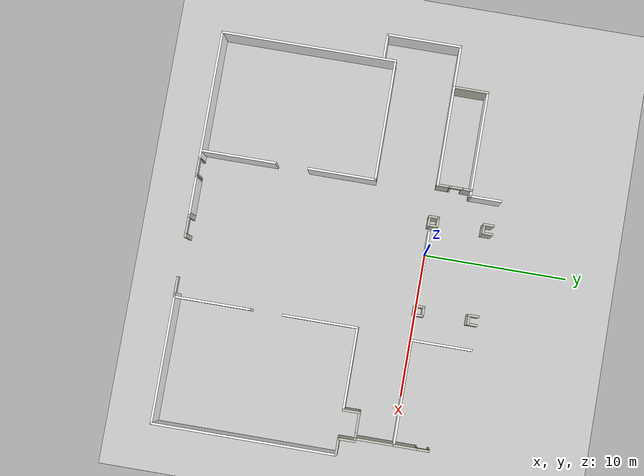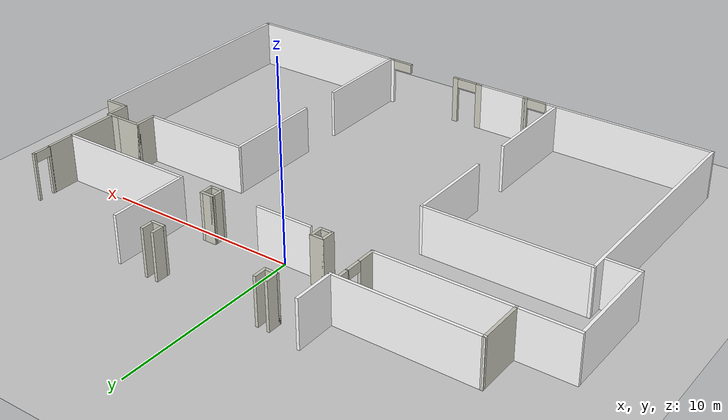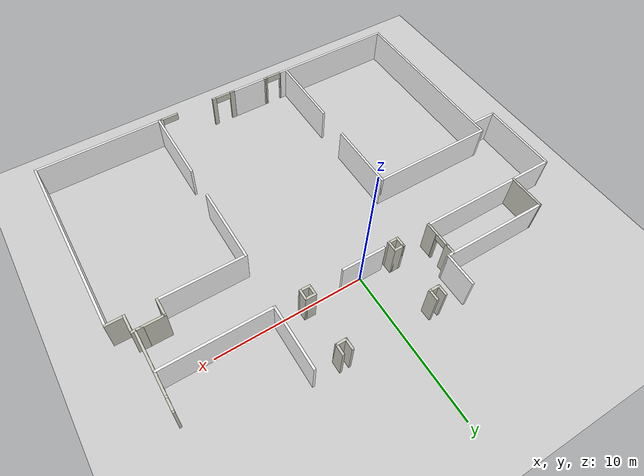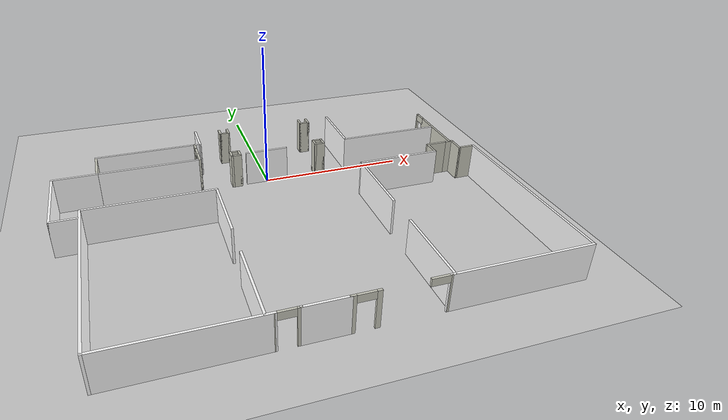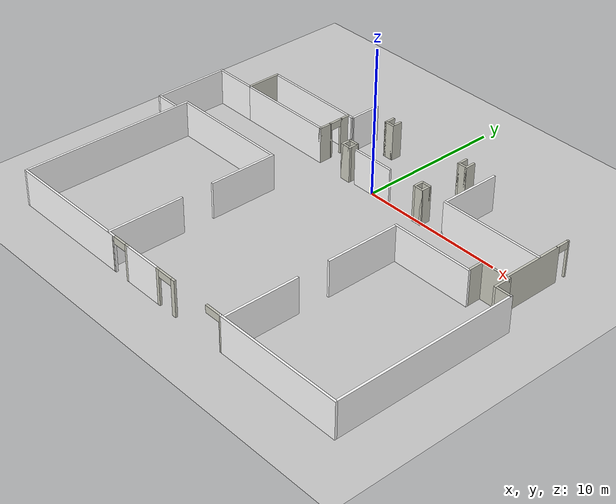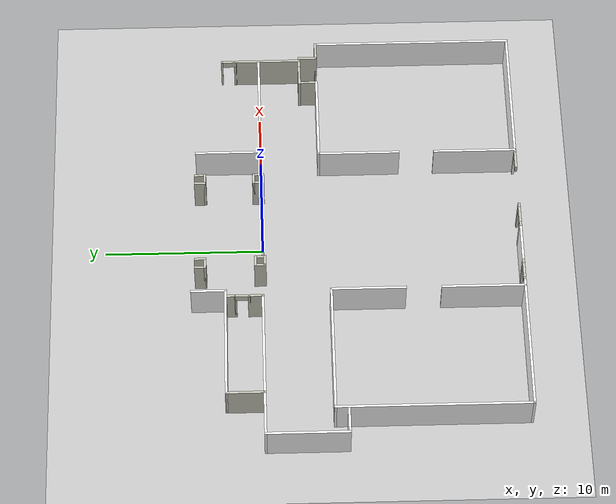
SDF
<sdf version="1.6">
 <world name="default">
  <model name="ground_plane">
   <static>1</static>
   <link name="link">
    <collision name="collision">
     <geometry><plane><normal>0 0 1</normal><size>100 100</size></plane></geometry>
     <surface><friction><ode><mu>100</mu><mu2>50</mu2></ode></friction></surface>
    </collision>
    <visual name="visual">
     <cast_shadows>0</cast_shadows>
     <geometry><plane><normal>0 0 1</normal><size>100 100</size></plane></geometry>
     <material>
      <script><uri>file://media/materials/scripts/gazebo.material</uri><name>Gazebo/Grey</name></script>
     </material>
    </visual>
   </link>
  </model>
  <model name="museum">
   <link name="Wall_115">
    <collision name="Wall_115_Collision">
     <geometry><box><size>2.5 0.15 2.5</size></box></geometry>
     <pose>0 0 1.25 0 -0 0</pose>
    </collision>
    <visual name="Wall_115_Visual">
     <pose>0 0 1.25 0 -0 0</pose>
     <geometry><box><size>2.5 0.15 2.5</size></box></geometry>
     <material>
      <script><uri>file://media/materials/scripts/gazebo.material</uri><name>Gazebo/PaintedWall</name></script>
      <ambient>1 1 1 1</ambient>
     </material>
    </visual>
    <pose>-11.5851 1.22076 0 0 0 -1.5708</pose>
   </link>
   <link name="Wall_122">
    <collision name="Wall_122_Collision">
     <geometry><box><size>7 0.15 2.5</size></box></geometry>
     <pose>0 0 1.25 0 -0 0</pose>
    </collision>
    <visual name="Wall_122_Visual">
     <pose>0 0 1.25 0 -0 0</pose>
     <geometry><box><size>7 0.15 2.5</size></box></geometry>
     <material>
      <script><uri>file://media/materials/scripts/gazebo.material</uri><name>Gazebo/Image13</name></script>
      <ambient>1 1 1 1</ambient>
     </material>
    </visual>
    <pose>-8.16012 0.045757 0 0 -0 0</pose>
   </link>
   <link name="Wall_125">
    <collision name="Wall_125_Collision">
     <geometry><box><size>1 0.15 2.5</size></box></geometry>
     <pose>0 0 1.25 0 -0 0</pose>
    </collision>
    <visual name="Wall_125_Visual">
     <pose>0 0 1.25 0 -0 0</pose>
     <geometry><box><size>1 0.15 2.5</size></box></geometry>
     <material>
      <script><uri>file://media/materials/scripts/gazebo.material</uri><name>Gazebo/PaintedWall</name></script>
      <ambient>1 1 1 1</ambient>
     </material>
    </visual>
    <pose>-4.73512 0.470757 0 0 -0 1.5708</pose>
   </link>
   <link name="Wall_126">
    <pose>-4.73512 1.32076 0 0 -0 1.5708</pose>
    <visual name="Wall_126_Visual_0">
     <pose>-0.480087 0 1.25 0 -0 0</pose>
     <geometry><box><size>0.039827 0.15 2.5</size></box></geometry>
     <material>
      <script><uri>file://media/materials/scripts/gazebo.material</uri><name>Gazebo/PaintedWall</name></script>
      <ambient>1 1 1 1</ambient>
     </material>
    </visual>
    <collision name="Wall_126_Collision_0">
     <geometry><box><size>0.039827 0.15 2.5</size></box></geometry>
     <pose>-0.480087 0 1.25 0 -0 0</pose>
    </collision>
    <visual name="Wall_126_Visual_1">
     <pose>0.469913 0 1.25 0 -0 0</pose>
     <geometry><box><size>0.060173 0.15 2.5</size></box></geometry>
     <material>
      <script><uri>file://media/materials/scripts/gazebo.material</uri><name>Gazebo/PaintedWall</name></script>
      <ambient>1 1 1 1</ambient>
     </material>
    </visual>
    <collision name="Wall_126_Collision_1">
     <geometry><box><size>0.060173 0.15 2.5</size></box></geometry>
     <pose>0.469913 0 1.25 0 -0 0</pose>
    </collision>
    <visual name="Wall_126_Visual_2">
     <pose>-0.010173 0 2.25 0 -0 0</pose>
     <geometry><box><size>0.9 0.15 0.5</size></box></geometry>
     <material>
      <script><uri>file://media/materials/scripts/gazebo.material</uri><name>Gazebo/PaintedWall</name></script>
      <ambient>1 1 1 1</ambient>
     </material>
    </visual>
    <collision name="Wall_126_Collision_2">
     <geometry><box><size>0.9 0.15 0.5</size></box></geometry>
     <pose>-0.010173 0 2.25 0 -0 0</pose>
    </collision>
   </link>
   <link name="Wall_127">
    <collision name="Wall_127_Collision">
     <geometry><box><size>0.75 0.15 2.5</size></box></geometry>
     <pose>0 0 1.25 0 -0 0</pose>
    </collision>
    <visual name="Wall_127_Visual">
     <pose>0 0 1.25 0 -0 0</pose>
     <geometry><box><size>0.75 0.15 2.5</size></box></geometry>
     <material>
      <script><uri>file://media/materials/scripts/gazebo.material</uri><name>Gazebo/PaintedWall</name></script>
      <ambient>1 1 1 1</ambient>
     </material>
    </visual>
    <pose>-4.73512 2.04576 0 0 -0 1.5708</pose>
   </link>
   <link name="Wall_135">
    <collision name="Wall_135_Collision">
     <geometry><box><size>3 0.15 2.5</size></box></geometry>
     <pose>0 0 1.25 0 -0 0</pose>
    </collision>
    <visual name="Wall_135_Visual">
     <pose>0 0 1.25 0 -0 0</pose>
     <geometry><box><size>3 0.15 2.5</size></box></geometry>
     <material>
      <script><uri>file://media/materials/scripts/gazebo.material</uri><name>Gazebo/Image27</name></script>
      <ambient>1 1 1 1</ambient>
     </material>
    </visual>
    <pose>-13.0101 0.045757 0 0 -0 3.14159</pose>
   </link>
   <link name="Wall_139">
    <collision name="Wall_139_Collision">
     <geometry><box><size>5.25 0.15 2.5</size></box></geometry>
     <pose>0 0 1.25 0 -0 0</pose>
    </collision>
    <visual name="Wall_139_Visual">
     <pose>0 0 1.25 0 -0 0</pose>
     <geometry><box><size>5.25 0.15 2.5</size></box></geometry>
     <material>
      <script><uri>file://media/materials/scripts/gazebo.material</uri><name>Gazebo/Image14</name></script>
      <ambient>1 1 1 1</ambient>
     </material>
    </visual>
    <pose>-14.4351 -2.50424 0 0 0 -1.5708</pose>
   </link>
   <link name="Wall_141">
    <collision name="Wall_141_Collision">
     <geometry><box><size>1.75 0.15 2.5</size></box></geometry>
     <pose>0 0 1.25 0 -0 0</pose>
    </collision>
    <visual name="Wall_141_Visual">
     <pose>0 0 1.25 0 -0 0</pose>
     <geometry><box><size>1.75 0.15 2.5</size></box></geometry>
     <material>
      <script><uri>file://media/materials/scripts/gazebo.material</uri><name>Gazebo/Image30</name></script>
      <ambient>1 1 1 1</ambient>
     </material>
    </visual>
    <pose>-13.6351 -5.05424 0 0 -0 0</pose>
   </link>
   <link name="Wall_146">
    <pose>13.1477 1.96699 0 0 0 -1.5708</pose>
    <visual name="Wall_146_Visual_0">
     <pose>-0.441517 0 1.25 0 -0 0</pose>
     <geometry><box><size>0.116967 0.15 2.5</size></box></geometry>
     <material>
      <script><uri>file://media/materials/scripts/gazebo.material</uri><name>Gazebo/PaintedWall</name></script>
      <ambient>1 1 1 1</ambient>
     </material>
    </visual>
    <collision name="Wall_146_Collision_0">
     <geometry><box><size>0.116967 0.15 2.5</size></box></geometry>
     <pose>-0.441517 0 1.25 0 -0 0</pose>
    </collision>
    <visual name="Wall_146_Visual_1">
     <pose>0.488483 0 1.25 0 -0 0</pose>
     <geometry><box><size>0.023033 0.15 2.5</size></box></geometry>
     <material>
      <script><uri>file://media/materials/scripts/gazebo.material</uri><name>Gazebo/PaintedWall</name></script>
      <ambient>1 1 1 1</ambient>
     </material>
    </visual>
    <collision name="Wall_146_Collision_1">
     <geometry><box><size>0.023033 0.15 2.5</size></box></geometry>
     <pose>0.488483 0 1.25 0 -0 0</pose>
    </collision>
    <visual name="Wall_146_Visual_2">
     <pose>0.046967 0 2.25 0 -0 0</pose>
     <geometry><box><size>0.86 0.15 0.5</size></box></geometry>
     <material>
      <script><uri>file://media/materials/scripts/gazebo.material</uri><name>Gazebo/PaintedWall</name></script>
      <ambient>1 1 1 1</ambient>
     </material>
    </visual>
    <collision name="Wall_146_Collision_2">
     <geometry><box><size>0.86 0.15 0.5</size></box></geometry>
     <pose>0.046967 0 2.25 0 -0 0</pose>
    </collision>
   </link>
   <link name="Wall_160">
    <collision name="Wall_160_Collision">
     <geometry><box><size>4.25 0.15 2.5</size></box></geometry>
     <pose>0 0 1.25 0 -0 0</pose>
    </collision>
    <visual name="Wall_160_Visual">
     <pose>0 0 1.25 0 -0 0</pose>
     <geometry><box><size>4.25 0.15 2.5</size></box></geometry>
     <material>
      <script><uri>file://media/materials/scripts/gazebo.material</uri><name>Gazebo/PaintedWall</name></script>
      <ambient>1 1 1 1</ambient>
     </material>
    </visual>
    <pose>13.1477 -0.508007 0 0 0 -1.5708</pose>
   </link>
   <link name="Wall_166">
    <collision name="Wall_166_Collision">
     <geometry><box><size>5.25 0.15 2.5</size></box></geometry>
     <pose>0 0 1.25 0 -0 0</pose>
    </collision>
    <visual name="Wall_166_Visual">
     <pose>0 0 1.25 0 -0 0</pose>
     <geometry><box><size>5.25 0.15 2.5</size></box></geometry>
     <material>
      <script><uri>file://media/materials/scripts/gazebo.material</uri><name>Gazebo/Image2</name></script>
      <ambient>1 1 1 1</ambient>
     </material>
    </visual>
    <pose>-4.36045 -13.7284 0 0 0 -1.5708</pose>
   </link>
   <link name="Wall_170">
    <collision name="Wall_170_Collision">
     <geometry><box><size>3 0.15 2.5</size></box></geometry>
     <pose>0 0 1.25 0 -0 0</pose>
    </collision>
    <visual name="Wall_170_Visual">
     <pose>0 0 1.25 0 -0 0</pose>
     <geometry><box><size>3 0.15 2.5</size></box></geometry>
     <material>
      <script><uri>file://media/materials/scripts/gazebo.material</uri><name>Gazebo/Image25</name></script>
      <ambient>1 1 1 1</ambient>
     </material>
    </visual>
   </link>
   <link name="Wall_192">
    <collision name="Wall_192_Collision">
     <geometry><box><size>0.75 0.15 2.5</size></box></geometry>
     <pose>0 0 1.25 0 -0 0</pose>
    </collision>
    <visual name="Wall_192_Visual">
     <pose>0 0 1.25 0 -0 0</pose>
     <geometry><box><size>0.75 0.15 2.5</size></box></geometry>
     <material>
      <script><uri>file://media/materials/scripts/gazebo.material</uri><name>Gazebo/PaintedWall</name></script>
      <ambient>1 1 1 1</ambient>
     </material>
    </visual>
    <pose>-2.20621 0.469078 0 0 -0 0</pose>
   </link>
   <link name="Wall_193">
    <collision name="Wall_193_Collision">
     <geometry><box><size>0.75 0.15 2.5</size></box></geometry>
     <pose>0 0 1.25 0 -0 0</pose>
    </collision>
    <visual name="Wall_193_Visual">
     <pose>0 0 1.25 0 -0 0</pose>
     <geometry><box><size>0.75 0.15 2.5</size></box></geometry>
     <material>
      <script><uri>file://media/materials/scripts/gazebo.material</uri><name>Gazebo/PaintedWall</name></script>
      <ambient>1 1 1 1</ambient>
     </material>
    </visual>
    <pose>-1.90621 0.169078 0 0 0 -1.5708</pose>
   </link>
   <link name="Wall_194">
    <collision name="Wall_194_Collision">
     <geometry><box><size>0.75 0.15 2.5</size></box></geometry>
     <pose>0 0 1.25 0 -0 0</pose>
    </collision>
    <visual name="Wall_194_Visual">
     <pose>0 0 1.25 0 -0 0</pose>
     <geometry><box><size>0.75 0.15 2.5</size></box></geometry>
     <material>
      <script><uri>file://media/materials/scripts/gazebo.material</uri><name>Gazebo/PaintedWall</name></script>
      <ambient>1 1 1 1</ambient>
     </material>
    </visual>
    <pose>-2.20621 -0.130922 0 0 -0 3.14159</pose>
   </link>
   <link name="Wall_195">
    <collision name="Wall_195_Collision">
     <geometry><box><size>0.75 0.15 2.5</size></box></geometry>
     <pose>0 0 1.25 0 -0 0</pose>
    </collision>
    <visual name="Wall_195_Visual">
     <pose>0 0 1.25 0 -0 0</pose>
     <geometry><box><size>0.75 0.15 2.5</size></box></geometry>
     <material>
      <script><uri>file://media/materials/scripts/gazebo.material</uri><name>Gazebo/PaintedWall</name></script>
      <ambient>1 1 1 1</ambient>
     </material>
    </visual>
    <pose>-2.50622 0.169078 0 0 -0 1.5708</pose>
   </link>
   <link name="Wall_197">
    <collision name="Wall_197_Collision">
     <geometry><box><size>0.75 0.15 2.5</size></box></geometry>
     <pose>0 0 1.25 0 -0 0</pose>
    </collision>
    <visual name="Wall_197_Visual">
     <pose>0 0 1.25 0 -0 0</pose>
     <geometry><box><size>0.75 0.15 2.5</size></box></geometry>
     <material>
      <script><uri>file://media/materials/scripts/gazebo.material</uri><name>Gazebo/PaintedWall</name></script>
      <ambient>1 1 1 1</ambient>
     </material>
    </visual>
    <pose>3.9677 0.495165 0 0 -0 0</pose>
   </link>
   <link name="Wall_198">
    <collision name="Wall_198_Collision">
     <geometry><box><size>0.75 0.15 2.5</size></box></geometry>
     <pose>0 0 1.25 0 -0 0</pose>
    </collision>
    <visual name="Wall_198_Visual">
     <pose>0 0 1.25 0 -0 0</pose>
     <geometry><box><size>0.75 0.15 2.5</size></box></geometry>
     <material>
      <script><uri>file://media/materials/scripts/gazebo.material</uri><name>Gazebo/PaintedWall</name></script>
      <ambient>1 1 1 1</ambient>
     </material>
    </visual>
    <pose>4.2677 0.195165 0 0 0 -1.5708</pose>
   </link>
   <link name="Wall_199">
    <collision name="Wall_199_Collision">
     <geometry><box><size>0.75 0.15 2.5</size></box></geometry>
     <pose>0 0 1.25 0 -0 0</pose>
    </collision>
    <visual name="Wall_199_Visual">
     <pose>0 0 1.25 0 -0 0</pose>
     <geometry><box><size>0.75 0.15 2.5</size></box></geometry>
     <material>
      <script><uri>file://media/materials/scripts/gazebo.material</uri><name>Gazebo/PaintedWall</name></script>
      <ambient>1 1 1 1</ambient>
     </material>
    </visual>
    <pose>3.9677 -0.104835 0 0 -0 3.14159</pose>
   </link>
   <link name="Wall_200">
    <collision name="Wall_200_Collision">
     <geometry><box><size>0.75 0.15 2.5</size></box></geometry>
     <pose>0 0 1.25 0 -0 0</pose>
    </collision>
    <visual name="Wall_200_Visual">
     <pose>0 0 1.25 0 -0 0</pose>
     <geometry><box><size>0.75 0.15 2.5</size></box></geometry>
     <material>
      <script><uri>file://media/materials/scripts/gazebo.material</uri><name>Gazebo/PaintedWall</name></script>
      <ambient>1 1 1 1</ambient>
     </material>
    </visual>
    <pose>3.6677 0.195165 0 0 -0 1.5708</pose>
   </link>
   <link name="Wall_203">
    <collision name="Wall_203_Collision">
     <geometry><box><size>0.75 0.15 2.5</size></box></geometry>
     <pose>0 0 1.25 0 -0 0</pose>
    </collision>
    <visual name="Wall_203_Visual">
     <pose>0 0 1.25 0 -0 0</pose>
     <geometry><box><size>0.75 0.15 2.5</size></box></geometry>
     <material>
      <script><uri>file://media/materials/scripts/gazebo.material</uri><name>Gazebo/PaintedWall</name></script>
      <ambient>1 1 1 1</ambient>
     </material>
    </visual>
    <pose>-1.98447 3.9343 0 0 0 -1.5708</pose>
   </link>
   <link name="Wall_204">
    <collision name="Wall_204_Collision">
     <geometry><box><size>0.75 0.15 2.5</size></box></geometry>
     <pose>0 0 1.25 0 -0 0</pose>
    </collision>
    <visual name="Wall_204_Visual">
     <pose>0 0 1.25 0 -0 0</pose>
     <geometry><box><size>0.75 0.15 2.5</size></box></geometry>
     <material>
      <script><uri>file://media/materials/scripts/gazebo.material</uri><name>Gazebo/PaintedWall</name></script>
      <ambient>1 1 1 1</ambient>
     </material>
    </visual>
    <pose>-2.28448 3.6343 0 0 -0 3.14159</pose>
   </link>
   <link name="Wall_205">
    <collision name="Wall_205_Collision">
     <geometry><box><size>0.75 0.15 2.5</size></box></geometry>
     <pose>0 0 1.25 0 -0 0</pose>
    </collision>
    <visual name="Wall_205_Visual">
     <pose>0 0 1.25 0 -0 0</pose>
     <geometry><box><size>0.75 0.15 2.5</size></box></geometry>
     <material>
      <script><uri>file://media/materials/scripts/gazebo.material</uri><name>Gazebo/PaintedWall</name></script>
      <ambient>1 1 1 1</ambient>
     </material>
    </visual>
    <pose>-2.58448 3.9343 0 0 -0 1.5708</pose>
   </link>
   <link name="Wall_208">
    <collision name="Wall_208_Collision">
     <geometry><box><size>0.75 0.15 2.5</size></box></geometry>
     <pose>0 0 1.25 0 -0 0</pose>
    </collision>
    <visual name="Wall_208_Visual">
     <pose>0 0 1.25 0 -0 0</pose>
     <geometry><box><size>0.75 0.15 2.5</size></box></geometry>
     <material>
      <script><uri>file://media/materials/scripts/gazebo.material</uri><name>Gazebo/PaintedWall</name></script>
      <ambient>1 1 1 1</ambient>
     </material>
    </visual>
    <pose>4.28509 3.90821 0 0 0 -1.5708</pose>
   </link>
   <link name="Wall_209">
    <collision name="Wall_209_Collision">
     <geometry><box><size>0.75 0.15 2.5</size></box></geometry>
     <pose>0 0 1.25 0 -0 0</pose>
    </collision>
    <visual name="Wall_209_Visual">
     <pose>0 0 1.25 0 -0 0</pose>
     <geometry><box><size>0.75 0.15 2.5</size></box></geometry>
     <material>
      <script><uri>file://media/materials/scripts/gazebo.material</uri><name>Gazebo/PaintedWall</name></script>
      <ambient>1 1 1 1</ambient>
     </material>
    </visual>
    <pose>3.98509 3.60821 0 0 -0 3.14159</pose>
   </link>
   <link name="Wall_210">
    <collision name="Wall_210_Collision">
     <geometry><box><size>0.75 0.15 2.5</size></box></geometry>
     <pose>0 0 1.25 0 -0 0</pose>
    </collision>
    <visual name="Wall_210_Visual">
     <pose>0 0 1.25 0 -0 0</pose>
     <geometry><box><size>0.75 0.15 2.5</size></box></geometry>
     <material>
      <script><uri>file://media/materials/scripts/gazebo.material</uri><name>Gazebo/PaintedWall</name></script>
      <ambient>1 1 1 1</ambient>
     </material>
    </visual>
    <pose>3.68509 3.90821 0 0 -0 1.5708</pose>
   </link>
   <link name="Wall_251">
    <collision name="Wall_251_Collision">
     <geometry><box><size>4.25 0.15 2.5</size></box></geometry>
     <pose>0 0 1.25 0 -0 0</pose>
    </collision>
    <visual name="Wall_251_Visual">
     <pose>0 0 1.25 0 -0 0</pose>
     <geometry><box><size>4.25 0.15 2.5</size></box></geometry>
     <material>
      <script><uri>file://media/materials/scripts/gazebo.material</uri><name>Gazebo/Image</name></script>
      <ambient>1 1 1 1</ambient>
     </material>
    </visual>
    <pose>6.00362 2.0683 0 0 0 -1.5708</pose>
   </link>
   <link name="Wall_252">
    <collision name="Wall_252_Collision">
     <geometry><box><size>7.25 0.15 2.5</size></box></geometry>
     <pose>0 0 1.25 0 -0 0</pose>
    </collision>
    <visual name="Wall_252_Visual">
     <pose>0 0 1.25 0 -0 0</pose>
     <geometry><box><size>7.25 0.15 2.5</size></box></geometry>
     <material>
      <script><uri>file://media/materials/scripts/gazebo.material</uri><name>Gazebo/Image10</name></script>
      <ambient>1 1 1 1</ambient>
     </material>
    </visual>
    <pose>9.55362 0.018299 0 0 -0 0</pose>
   </link>
   <link name="Wall_3">
    <collision name="Wall_3_Collision">
     <geometry><box><size>2.25 0.15 2.5</size></box></geometry>
     <pose>0 0 1.25 0 -0 0</pose>
    </collision>
    <visual name="Wall_3_Visual">
     <pose>0 0 1.25 0 -0 0</pose>
     <geometry><box><size>2.25 0.15 2.5</size></box></geometry>
     <material>
      <script><uri>file://media/materials/scripts/gazebo.material</uri><name>Gazebo/Image26</name></script>
      <ambient>1 1 1 1</ambient>
     </material>
    </visual>
    <pose>-4.33523 3.42476 0 0 0 -1.5708</pose>
   </link>
   <link name="Wall_54">
    <collision name="Wall_54_Collision">
     <geometry><box><size>0.75 0.15 2.5</size></box></geometry>
     <pose>0 0 1.25 0 -0 0</pose>
    </collision>
    <visual name="Wall_54_Visual">
     <pose>0 0 1.25 0 -0 0</pose>
     <geometry><box><size>0.75 0.15 2.5</size></box></geometry>
     <material>
      <script><uri>file://media/materials/scripts/gazebo.material</uri><name>Gazebo/PaintedWall</name></script>
      <ambient>1 1 1 1</ambient>
     </material>
    </visual>
    <pose>13.0351 -2.62487 0 0 -0 0</pose>
   </link>
   <link name="Wall_55">
    <collision name="Wall_55_Collision">
     <geometry><box><size>1.25 0.15 2.5</size></box></geometry>
     <pose>0 0 1.25 0 -0 0</pose>
    </collision>
    <visual name="Wall_55_Visual">
     <pose>0 0 1.25 0 -0 0</pose>
     <geometry><box><size>1.25 0.15 2.5</size></box></geometry>
     <material>
      <script><uri>file://media/materials/scripts/gazebo.material</uri><name>Gazebo/PaintedWall</name></script>
      <ambient>1 1 1 1</ambient>
     </material>
    </visual>
    <pose>13.3351 -3.17487 0 0 0 -1.5708</pose>
   </link>
   <link name="Wall_56">
    <collision name="Wall_56_Collision">
     <geometry><box><size>1.25 0.15 2.5</size></box></geometry>
     <pose>0 0 1.25 0 -0 0</pose>
    </collision>
    <visual name="Wall_56_Visual">
     <pose>0 0 1.25 0 -0 0</pose>
     <geometry><box><size>1.25 0.15 2.5</size></box></geometry>
     <material>
      <script><uri>file://media/materials/scripts/gazebo.material</uri><name>Gazebo/PaintedWall</name></script>
      <ambient>1 1 1 1</ambient>
     </material>
    </visual>
    <pose>13.8851 -3.72487 0 0 -0 0</pose>
   </link>
   <link name="Wall_59">
    <collision name="Wall_59_Collision">
     <geometry><box><size>12.75 0.15 2.5</size></box></geometry>
     <pose>0 0 1.25 0 -0 0</pose>
    </collision>
    <visual name="Wall_59_Visual">
     <pose>0 0 1.25 0 -0 0</pose>
     <geometry><box><size>12.75 0.15 2.5</size></box></geometry>
     <material>
      <script><uri>file://media/materials/scripts/gazebo.material</uri><name>Gazebo/Image12</name></script>
      <ambient>1 1 1 1</ambient>
     </material>
    </visual>
    <pose>14.4351 -10.0249 0 0 0 -1.5708</pose>
   </link>
   <link name="Wall_60">
    <collision name="Wall_60_Collision">
     <geometry><box><size>9 0.15 2.5</size></box></geometry>
     <pose>0 0 1.25 0 -0 0</pose>
    </collision>
    <visual name="Wall_60_Visual">
     <pose>0 0 1.25 0 -0 0</pose>
     <geometry><box><size>9 0.15 2.5</size></box></geometry>
     <material>
      <script><uri>file://media/materials/scripts/gazebo.material</uri><name>Gazebo/Image11</name></script>
      <ambient>1 1 1 1</ambient>
     </material>
    </visual>
    <pose>10.0101 -16.3249 0 0 -0 3.14159</pose>
   </link>
   <link name="Wall_66">
    <pose>5.03512 -16.3249 0 0 -0 3.14159</pose>
    <visual name="Wall_66_Visual_0">
     <pose>-0.574555 0 1.25 0 -0 0</pose>
     <geometry><box><size>0.10089 0.15 2.5</size></box></geometry>
     <material>
      <script><uri>file://media/materials/scripts/gazebo.material</uri><name>Gazebo/PaintedWall</name></script>
      <ambient>1 1 1 1</ambient>
     </material>
    </visual>
    <collision name="Wall_66_Collision_0">
     <geometry><box><size>0.10089 0.15 2.5</size></box></geometry>
     <pose>-0.574555 0 1.25 0 -0 0</pose>
    </collision>
    <visual name="Wall_66_Visual_1">
     <pose>0.050445 0 2.25 0 -0 0</pose>
     <geometry><box><size>1.14911 0.15 0.5</size></box></geometry>
     <material>
      <script><uri>file://media/materials/scripts/gazebo.material</uri><name>Gazebo/PaintedWall</name></script>
      <ambient>1 1 1 1</ambient>
     </material>
    </visual>
    <collision name="Wall_66_Collision_1">
     <geometry><box><size>1.14911 0.15 0.5</size></box></geometry>
     <pose>0.050445 0 2.25 0 -0 0</pose>
    </collision>
   </link>
   <link name="Wall_70">
    <pose>0.835118 -16.3249 0 0 -0 3.14159</pose>
    <visual name="Wall_70_Visual_0">
     <pose>-0.726513 0 1.25 0 -0 0</pose>
     <geometry><box><size>0.296974 0.15 2.5</size></box></geometry>
     <material>
      <script><uri>file://media/materials/scripts/gazebo.material</uri><name>Gazebo/PaintedWall</name></script>
      <ambient>1 1 1 1</ambient>
     </material>
    </visual>
    <collision name="Wall_70_Collision_0">
     <geometry><box><size>0.296974 0.15 2.5</size></box></geometry>
     <pose>-0.726513 0 1.25 0 -0 0</pose>
    </collision>
    <visual name="Wall_70_Visual_1">
     <pose>0.697252 0 1.25 0 -0 0</pose>
     <geometry><box><size>0.355495 0.15 2.5</size></box></geometry>
     <material>
      <script><uri>file://media/materials/scripts/gazebo.material</uri><name>Gazebo/PaintedWall</name></script>
      <ambient>1 1 1 1</ambient>
     </material>
    </visual>
    <collision name="Wall_70_Collision_1">
     <geometry><box><size>0.355495 0.15 2.5</size></box></geometry>
     <pose>0.697252 0 1.25 0 -0 0</pose>
    </collision>
    <visual name="Wall_70_Visual_2">
     <pose>-0.029261 0 2.25 0 -0 0</pose>
     <geometry><box><size>1.09753 0.15 0.5</size></box></geometry>
     <material>
      <script><uri>file://media/materials/scripts/gazebo.material</uri><name>Gazebo/PaintedWall</name></script>
      <ambient>1 1 1 1</ambient>
     </material>
    </visual>
    <collision name="Wall_70_Collision_2">
     <geometry><box><size>1.09753 0.15 0.5</size></box></geometry>
     <pose>-0.029261 0 2.25 0 -0 0</pose>
    </collision>
   </link>
   <link name="Wall_71">
    <collision name="Wall_71_Collision">
     <geometry><box><size>2.75 0.15 2.5</size></box></geometry>
     <pose>0 0 1.25 0 -0 0</pose>
    </collision>
    <visual name="Wall_71_Visual">
     <pose>0 0 1.25 0 -0 0</pose>
     <geometry><box><size>2.75 0.15 2.5</size></box></geometry>
     <material>
      <script><uri>file://media/materials/scripts/gazebo.material</uri><name>Gazebo/Image24</name></script>
      <ambient>1 1 1 1</ambient>
     </material>
    </visual>
    <pose>-1.26488 -16.3249 0 0 -0 3.14159</pose>
   </link>
   <link name="Wall_75">
    <pose>-3.21267 -16.3266 0 0 -0 0.002733</pose>
    <visual name="Wall_75_Visual_0">
     <pose>-0.658764 0 1.25 0 -0 0</pose>
     <geometry><box><size>0.128044 0.15 2.5</size></box></geometry>
     <material>
      <script><uri>file://media/materials/scripts/gazebo.material</uri><name>Gazebo/PaintedWall</name></script>
      <ambient>1 1 1 1</ambient>
     </material>
    </visual>
    <collision name="Wall_75_Collision_0">
     <geometry><box><size>0.128044 0.15 2.5</size></box></geometry>
     <pose>-0.658764 0 1.25 0 -0 0</pose>
    </collision>
    <visual name="Wall_75_Visual_1">
     <pose>0.59079 0 1.25 0 -0 0</pose>
     <geometry><box><size>0.263992 0.15 2.5</size></box></geometry>
     <material>
      <script><uri>file://media/materials/scripts/gazebo.material</uri><name>Gazebo/PaintedWall</name></script>
      <ambient>1 1 1 1</ambient>
     </material>
    </visual>
    <collision name="Wall_75_Collision_1">
     <geometry><box><size>0.263992 0.15 2.5</size></box></geometry>
     <pose>0.59079 0 1.25 0 -0 0</pose>
    </collision>
    <visual name="Wall_75_Visual_2">
     <pose>-0.067974 0 2.25 0 -0 0</pose>
     <geometry><box><size>1.05354 0.15 0.5</size></box></geometry>
     <material>
      <script><uri>file://media/materials/scripts/gazebo.material</uri><name>Gazebo/PaintedWall</name></script>
      <ambient>1 1 1 1</ambient>
     </material>
    </visual>
    <collision name="Wall_75_Collision_2">
     <geometry><box><size>1.05354 0.15 0.5</size></box></geometry>
     <pose>-0.067974 0 2.25 0 -0 0</pose>
    </collision>
   </link>
   <link name="Wall_77">
    <collision name="Wall_77_Collision">
     <geometry><box><size>9 0.15 2.5</size></box></geometry>
     <pose>0 0 1.25 0 -0 0</pose>
    </collision>
    <visual name="Wall_77_Visual">
     <pose>0 0 1.25 0 -0 0</pose>
     <geometry><box><size>9 0.15 2.5</size></box></geometry>
     <material>
      <script><uri>file://media/materials/scripts/gazebo.material</uri><name>Gazebo/Image7</name></script>
      <ambient>1 1 1 1</ambient>
     </material>
    </visual>
    <pose>-8.28545 -16.3284 0 0 -0 3.14159</pose>
   </link>
   <link name="Wall_8">
    <collision name="Wall_8_Collision">
     <geometry><box><size>7.39992 0.15 2.5</size></box></geometry>
     <pose>0 0 1.25 0 -0 0</pose>
    </collision>
    <visual name="Wall_8_Visual">
     <pose>0 0 1.25 0 -0 0</pose>
     <geometry><box><size>7.39992 0.15 2.5</size></box></geometry>
     <material>
      <script><uri>file://media/materials/scripts/gazebo.material</uri><name>Gazebo/Image16</name></script>
      <ambient>1 1 1 1</ambient>
     </material>
    </visual>
    <pose>-7.96018 2.38526 0 0 -0 3.1387</pose>
   </link>
   <link name="Wall_80">
    <collision name="Wall_80_Collision">
     <geometry><box><size>12.25 0.15 2.5</size></box></geometry>
     <pose>0 0 1.25 0 -0 0</pose>
    </collision>
    <visual name="Wall_80_Visual">
     <pose>0 0 1.25 0 -0 0</pose>
     <geometry><box><size>12.25 0.15 2.5</size></box></geometry>
     <material>
      <script><uri>file://media/materials/scripts/gazebo.material</uri><name>Gazebo/Image5</name></script>
      <ambient>1 1 1 1</ambient>
     </material>
    </visual>
    <pose>-12.7104 -10.2784 0 0 -0 1.5708</pose>
   </link>
   <link name="Wall_82">
    <collision name="Wall_82_Collision">
     <geometry><box><size>8.5 0.15 2.5</size></box></geometry>
     <pose>0 0 1.25 0 -0 0</pose>
    </collision>
    <visual name="Wall_82_Visual">
     <pose>0 0 1.25 0 -0 0</pose>
     <geometry><box><size>8.5 0.15 2.5</size></box></geometry>
     <material>
      <script><uri>file://media/materials/scripts/gazebo.material</uri><name>Gazebo/Image6</name></script>
      <ambient>1 1 1 1</ambient>
     </material>
    </visual>
    <pose>-8.53545 -4.22841 0 0 -0 0</pose>
   </link>
   <link name="Wall_83">
    <collision name="Wall_83_Collision">
     <geometry><box><size>4.75 0.15 2.5</size></box></geometry>
     <pose>0 0 1.25 0 -0 0</pose>
    </collision>
    <visual name="Wall_83_Visual">
     <pose>0 0 1.25 0 -0 0</pose>
     <geometry><box><size>4.75 0.15 2.5</size></box></geometry>
     <material>
      <script><uri>file://media/materials/scripts/gazebo.material</uri><name>Gazebo/Image3</name></script>
      <ambient>1 1 1 1</ambient>
     </material>
    </visual>
    <pose>-4.36045 -6.52841 0 0 0 -1.5708</pose>
   </link>
   <link name="Wall_92">
    <collision name="Wall_92_Collision">
     <geometry><box><size>1.5 0.15 2.5</size></box></geometry>
     <pose>0 0 1.25 0 -0 0</pose>
    </collision>
    <visual name="Wall_92_Visual">
     <pose>0 0 1.25 0 -0 0</pose>
     <geometry><box><size>1.5 0.15 2.5</size></box></geometry>
     <material>
      <script><uri>file://media/materials/scripts/gazebo.material</uri><name>Gazebo/PaintedWall</name></script>
      <ambient>1 1 1 1</ambient>
     </material>
    </visual>
    <pose>12.0601 -2.62487 0 0 -0 3.14159</pose>
   </link>
   <link name="Wall_93">
    <collision name="Wall_93_Collision">
     <geometry><box><size>1.25 0.15 2.5</size></box></geometry>
     <pose>0 0 1.25 0 -0 0</pose>
    </collision>
    <visual name="Wall_93_Visual">
     <pose>0 0 1.25 0 -0 0</pose>
     <geometry><box><size>1.25 0.15 2.5</size></box></geometry>
     <material>
      <script><uri>file://media/materials/scripts/gazebo.material</uri><name>Gazebo/PaintedWall</name></script>
      <ambient>1 1 1 1</ambient>
     </material>
    </visual>
    <pose>11.3851 -3.17487 0 0 0 -1.5708</pose>
   </link>
   <link name="Wall_94">
    <collision name="Wall_94_Collision">
     <geometry><box><size>5.75 0.15 2.5</size></box></geometry>
     <pose>0 0 1.25 0 -0 0</pose>
    </collision>
    <visual name="Wall_94_Visual">
     <pose>0 0 1.25 0 -0 0</pose>
     <geometry><box><size>5.75 0.15 2.5</size></box></geometry>
     <material>
      <script><uri>file://media/materials/scripts/gazebo.material</uri><name>Gazebo/Image9</name></script>
      <ambient>1 1 1 1</ambient>
     </material>
    </visual>
    <pose>8.58512 -3.72487 0 0 -0 3.14159</pose>
   </link>
   <link name="Wall_95">
    <collision name="Wall_95_Collision">
     <geometry><box><size>5.25 0.15 2.5</size></box></geometry>
     <pose>0 0 1.25 0 -0 0</pose>
    </collision>
    <visual name="Wall_95_Visual">
     <pose>0 0 1.25 0 -0 0</pose>
     <geometry><box><size>5.25 0.15 2.5</size></box></geometry>
     <material>
      <script><uri>file://media/materials/scripts/gazebo.material</uri><name>Gazebo/Image1</name></script>
      <ambient>1 1 1 1</ambient>
     </material>
    </visual>
    <pose>5.78512 -6.27487 0 0 0 -1.5708</pose>
   </link>
   <link name="Wall_99">
    <collision name="Wall_99_Collision">
     <geometry><box><size>5.25 0.15 2.5</size></box></geometry>
     <pose>0 0 1.25 0 -0 0</pose>
    </collision>
    <visual name="Wall_99_Visual">
     <pose>0 0 1.25 0 -0 0</pose>
     <geometry><box><size>5.25 0.15 2.5</size></box></geometry>
     <material>
      <script><uri>file://media/materials/scripts/gazebo.material</uri><name>Gazebo/Image8</name></script>
      <ambient>1 1 1 1</ambient>
     </material>
    </visual>
    <pose>5.78512 -13.7249 0 0 0 -1.5708</pose>
   </link>
   <static>1</static>
  </model>
 </world>
</sdf>
